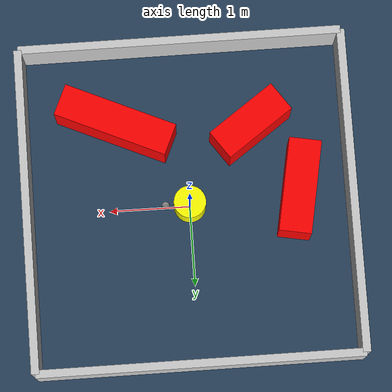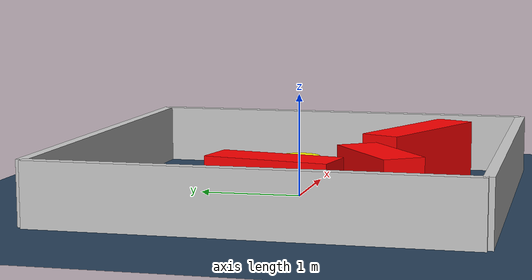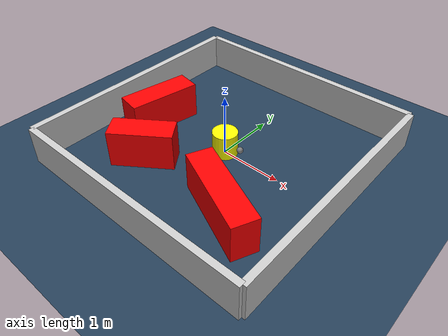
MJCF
<?xml version="1.0" ?>
<mujoco model="generated_environment">
  <option timestep="0.01" integrator="RK4" cone="elliptic"/>
  <default>
    <geom density="1"/>
  </default>
  <asset>
    <texture builtin="gradient" height="3072" rgb1="0.3 0.5 0.7" rgb2="0 0 0" type="skybox" width="512"/>
    <texture builtin="checker" height="300" mark="edge" markrgb="0.8 0.8 0.8" name="groundplane" rgb1="0.2 0.3 0.4" rgb2="0.1 0.2 0.3" type="2d" width="300"/>
    <material name="groundplane" reflectance="0.2" texrepeat="5 5" texture="groundplane" texuniform="true"/>
    <material name="robot" rgba="0.0 1.0 0.0 1"/>
  </asset>
  <worldbody>
    <light dir="0 0 -1" directional="true" pos="0 0 1.5"/>
    <geom condim="4" friction="1.0 0.005 0.001" material="groundplane" name="floor" size="0 0 0.05" type="plane"/>
    <body name="walls">
      <geom name="wall_1" condim="4" pos="-2.0 0.0 0.3" rgba="0.800000011920929 0.800000011920929 0.800000011920929 1.0" size="0.05 2.0 0.3" type="box"/>
      <geom name="wall_2" condim="4" pos="2.0 0.0 0.3" rgba="0.800000011920929 0.800000011920929 0.800000011920929 1.0" size="0.05 2.0 0.3" type="box"/>
      <geom name="wall_3" condim="4" pos="0.0 -2.0 0.3" rgba="0.800000011920929 0.800000011920929 0.800000011920929 1.0" size="2.0 0.05 0.3" type="box"/>
      <geom name="wall_4" condim="4" pos="0.0 2.0 0.3" rgba="0.800000011920929 0.800000011920929 0.800000011920929 1.0" size="2.0 0.05 0.3" type="box"/>
    </body>
    <body name="robot">
      <joint name="joint_x" type="slide" pos="0 0 0" axis="1 0 0"/>
      <joint name="joint_y" type="slide" pos="0 0 0" axis="0 1 0"/>
      <geom name="robot" type="sphere" pos="0.3 0.0 0.2" size="0.05" mass="5." friction="1.0 0.005 0.0001" condim="4" rgba="0.5 0.5 0.5 1.0"/>
      <site name="sensor_ball"/>
    </body>
    <body name="obstacle_movable_1">
      <geom name="obstacle_movable_1" condim="4" pos="0.0 0.0 0.2" euler="0 0 0.0" friction="1.0 0.005 0.001" rgba="1.0 1.0 0.0 1.0" size="0.2 0.2 0.0" type="cylinder" mass="0.1"/>
      <joint type="free"/>
    </body>
    <body name="obstacle_2_static">
      <geom name="obstacle_2_static" condim="4" pos="0.8510183982706836 -1.052262705115265 0.3" euler="0 0 155.85684184970452" friction="1.0 0.005 0.001" rgba="1 0 0 1" size="0.725875711566679 0.2 0.3" type="box"/>
    </body>
    <body name="obstacle_3_static">
      <geom name="obstacle_3_static" condim="4" pos="-0.8104510227123507 -0.9253268805612163 0.3" euler="0 0 215.24478061889988" friction="1.0 0.005 0.001" rgba="1 0 0 1" size="0.4876186092063836 0.2 0.3" type="box"/>
    </body>
    <body name="obstacle_4_static">
      <geom name="obstacle_4_static" condim="4" pos="-1.358637831908003 -0.0805112674226014 0.3" euler="0 0 259.42830933977723" friction="1.0 0.005 0.001" rgba="1 0 0 1" size="0.5790579793654994 0.2 0.3" type="box"/>
    </body>
  </worldbody>
  <actuator>
    <motor name="actuator_x" joint="joint_x" gear="1" ctrlrange="-1 1"/>
    <motor name="actuator_y" joint="joint_y" gear="1" ctrlrange="-1 1"/>
  </actuator>
</mujoco>
